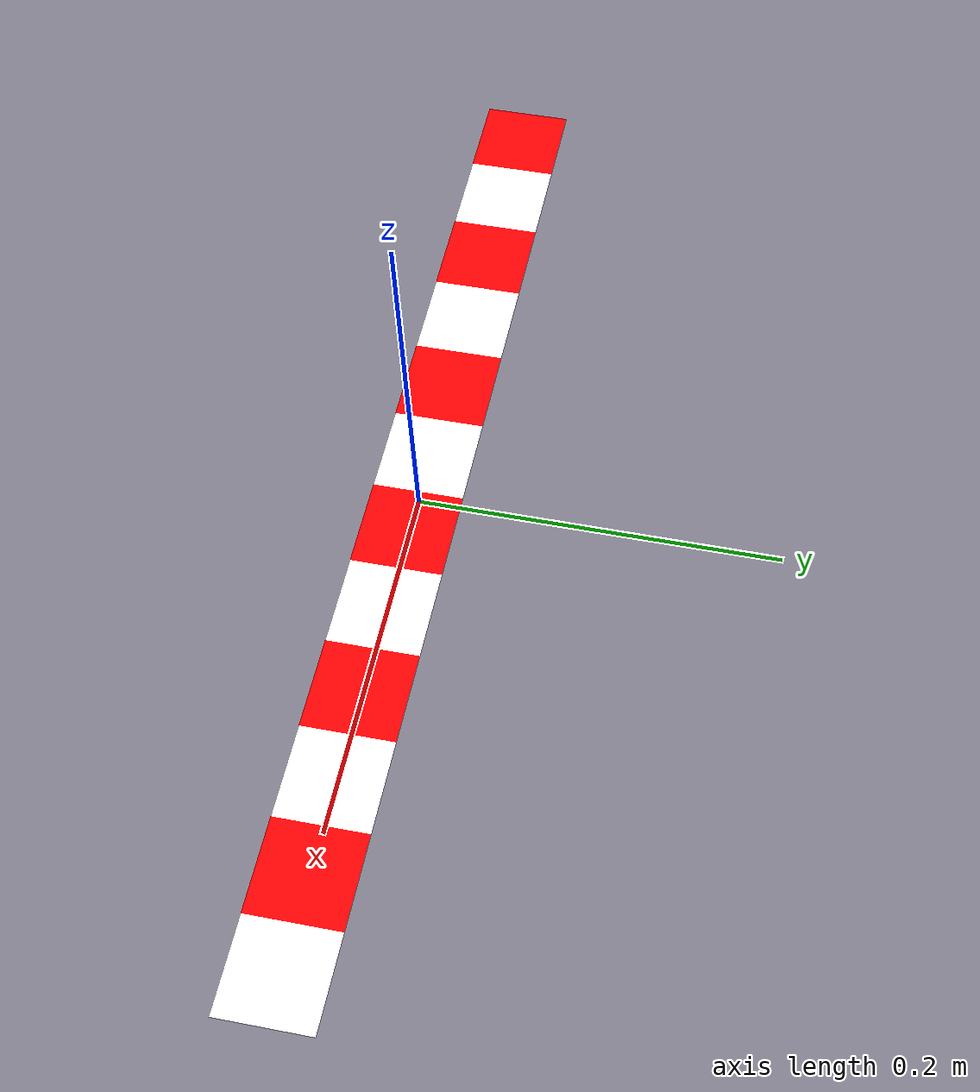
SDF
<?xml version="1.0" ?>
<sdf version='1.5'>
<model name='redline_short'>
<static>true</static>
<link name="redline_short">
   <pose frame=''>0 0 0.01 0 0 0</pose>
  <visual name='redlineV'>
    <cast_shadows>false</cast_shadows>
    <geometry>
      <mesh>
        <scale>1.0 1.0 1.0</scale>
        <uri>model://redline_short/redline_short.dae</uri>
      </mesh>
    </geometry>
    <material>
      <script>
        <name>start</name>
        <uri>model://redline_short/redline_short.dae</uri>
      </script>
    </material>
  </visual>
</link>
</model>
</sdf>
